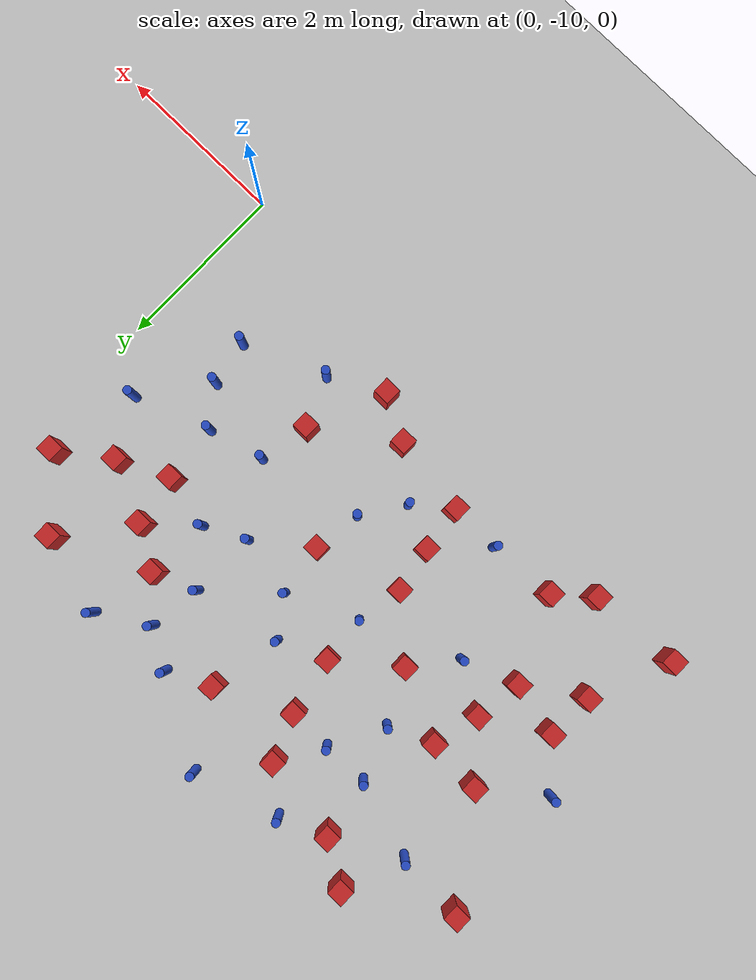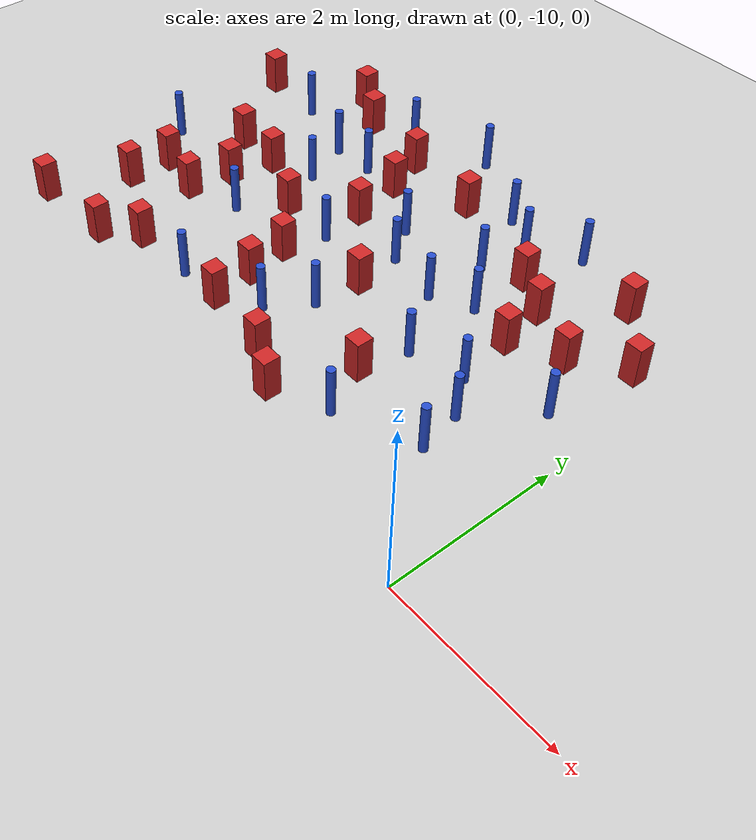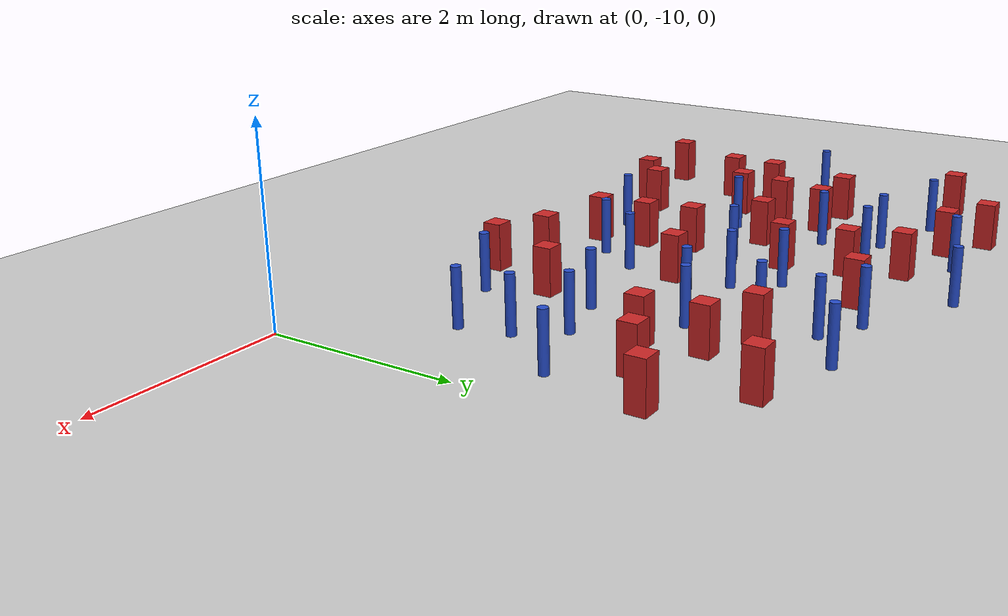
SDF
<sdf version="1.6">
 <world name="default">
  <model name="ground_plane">
   <static>1</static>
   <link name="link">
    <collision name="collision">
     <geometry><plane><normal>0 0 1</normal><size>100 100</size></plane></geometry>
     <surface><friction><ode><mu>100</mu><mu2>50</mu2></ode></friction></surface>
    </collision>
    <visual name="visual">
     <cast_shadows>0</cast_shadows>
     <geometry><plane><normal>0 0 1</normal><size>100 100</size></plane></geometry>
     <material>
      <ambient>1.0 1.0 1.0 1.0</ambient>
      <diffuse>0.8 0.8 0.8 1.0</diffuse>
      <specular>0.01 0.01 0.01 1.000000</specular>
     </material>
    </visual>
   </link>
  </model>
  <model name="square_post_obstacle7">
   <static>true</static>
   <pose>-0.348357838696 -6.40661446399 8.22691968438e-08 7.2212513382e-06 -7.54495500217e-07 2.29674213826e-05</pose>
   <link name="link">
    <pose>0 0 0.25 0 -0 0</pose>
    <inertial>
     <mass>100</mass>
     <inertia>
      <ixx>0.166667</ixx>
      <ixy>0</ixy>
      <ixz>0</ixz>
      <iyy>0.166667</iyy>
      <iyz>0</iyz>
      <izz>0.166667</izz>
     </inertia>
    </inertial>
    <collision name="collision"><geometry><box><size>.2 .2 .5</size></box></geometry></collision>
    <visual name="visual">
     <geometry><box><size>.2 .2 .5</size></box></geometry>
     <material>
      <script><name>Gazebo/Red</name><uri>file://media/materials/scripts/gazebo.material</uri></script>
     </material>
    </visual>
   </link>
  </model>
  <model name="square_post_obstacle17">
   <static>true</static>
   <pose>-0.917751412728 -6.81275528591 8.22691968438e-08 7.22125133819e-06 -7.54495500217e-07 2.29674213826e-05</pose>
   <link name="link">
    <pose>0 0 0.25 0 -0 0</pose>
    <inertial>
     <mass>100</mass>
     <inertia>
      <ixx>0.166667</ixx>
      <ixy>0</ixy>
      <ixz>0</ixz>
      <iyy>0.166667</iyy>
      <iyz>0</iyz>
      <izz>0.166667</izz>
     </inertia>
    </inertial>
    <collision name="collision"><geometry><box><size>.2 .2 .5</size></box></geometry></collision>
    <visual name="visual">
     <geometry><box><size>.2 .2 .5</size></box></geometry>
     <material>
      <script><name>Gazebo/Red</name><uri>file://media/materials/scripts/gazebo.material</uri></script>
     </material>
    </visual>
   </link>
  </model>
  <model name="pole_obstacle20">
   <static>true</static>
   <pose>-3.23051718857 -8.1966301705 2.88873142074e-08 -9.9053668994e-09 4.60219948987e-07 -1.20965994963e-07</pose>
   <link name="link">
    <pose>0 0 0.3 0 -0 0</pose>
    <inertial>
     <mass>1</mass>
     <inertia><ixx>0.145833</ixx><ixy>0</ixy><ixz>0</ixz><iyy>0.145833</iyy><iyz>0</iyz><izz>0.125</izz></inertia>
    </inertial>
    <collision name="collision">
     <geometry><cylinder><radius>0.05</radius><length>.6</length></cylinder></geometry>
    </collision>
    <visual name="visual">
     <geometry><cylinder><radius>0.05</radius><length>.6</length></cylinder></geometry>
     <material>
      <script><name>Gazebo/Blue</name><uri>file://media/materials/scripts/gazebo.material</uri></script>
     </material>
    </visual>
   </link>
  </model>
  <model name="pole_obstacle21">
   <static>true</static>
   <pose>-2.45525858788 -5.79399990301 2.88873142074e-08 -9.90536689859e-09 4.60219948989e-07 -1.20965994961e-07</pose>
   <link name="link">
    <pose>0 0 0.3 0 -0 0</pose>
    <inertial>
     <mass>1</mass>
     <inertia><ixx>0.145833</ixx><ixy>0</ixy><ixz>0</ixz><iyy>0.145833</iyy><iyz>0</iyz><izz>0.125</izz></inertia>
    </inertial>
    <collision name="collision">
     <geometry><cylinder><radius>0.05</radius><length>.6</length></cylinder></geometry>
    </collision>
    <visual name="visual">
     <geometry><cylinder><radius>0.05</radius><length>.6</length></cylinder></geometry>
     <material>
      <script><name>Gazebo/Blue</name><uri>file://media/materials/scripts/gazebo.material</uri></script>
     </material>
    </visual>
   </link>
  </model>
  <model name="pole_obstacle22">
   <static>true</static>
   <pose>-0.980689446663 -8.69325914813 2.88873142074e-08 -9.90536690773e-09 4.60219948967e-07 -1.20965994976e-07</pose>
   <link name="link">
    <pose>0 0 0.3 0 -0 0</pose>
    <inertial>
     <mass>1</mass>
     <inertia><ixx>0.145833</ixx><ixy>0</ixy><ixz>0</ixz><iyy>0.145833</iyy><iyz>0</iyz><izz>0.125</izz></inertia>
    </inertial>
    <collision name="collision">
     <geometry><cylinder><radius>0.05</radius><length>.6</length></cylinder></geometry>
    </collision>
    <visual name="visual">
     <geometry><cylinder><radius>0.05</radius><length>.6</length></cylinder></geometry>
     <material>
      <script><name>Gazebo/Blue</name><uri>file://media/materials/scripts/gazebo.material</uri></script>
     </material>
    </visual>
   </link>
  </model>
  <model name="square_post_obstacle20">
   <static>true</static>
   <pose>-3.03909078209 -9.11293925311 8.22691968438e-08 7.22125133819e-06 -7.54495500217e-07 2.29674213826e-05</pose>
   <link name="link">
    <pose>0 0 0.25 0 -0 0</pose>
    <inertial>
     <mass>100</mass>
     <inertia>
      <ixx>0.166667</ixx>
      <ixy>0</ixy>
      <ixz>0</ixz>
      <iyy>0.166667</iyy>
      <iyz>0</iyz>
      <izz>0.166667</izz>
     </inertia>
    </inertial>
    <collision name="collision"><geometry><box><size>.2 .2 .5</size></box></geometry></collision>
    <visual name="visual">
     <geometry><box><size>.2 .2 .5</size></box></geometry>
     <material>
      <script><name>Gazebo/Red</name><uri>file://media/materials/scripts/gazebo.material</uri></script>
     </material>
    </visual>
   </link>
  </model>
  <model name="square_post_obstacle27">
   <static>true</static>
   <pose>-5.74001574737 -8.08323386068 8.22691968438e-08 7.2212513382e-06 -7.54495500217e-07 2.29674213826e-05</pose>
   <link name="link">
    <pose>0 0 0.25 0 -0 0</pose>
    <inertial>
     <mass>100</mass>
     <inertia>
      <ixx>0.166667</ixx>
      <ixy>0</ixy>
      <ixz>0</ixz>
      <iyy>0.166667</iyy>
      <iyz>0</iyz>
      <izz>0.166667</izz>
     </inertia>
    </inertial>
    <collision name="collision"><geometry><box><size>.2 .2 .5</size></box></geometry></collision>
    <visual name="visual">
     <geometry><box><size>.2 .2 .5</size></box></geometry>
     <material>
      <script><name>Gazebo/Red</name><uri>file://media/materials/scripts/gazebo.material</uri></script>
     </material>
    </visual>
   </link>
  </model>
  <model name="square_post_obstacle28">
   <static>true</static>
   <pose>-2.5342378268 -9.38205166103 8.22691968438e-08 7.22125133819e-06 -7.54495500217e-07 2.29674213826e-05</pose>
   <link name="link">
    <pose>0 0 0.25 0 -0 0</pose>
    <inertial>
     <mass>100</mass>
     <inertia>
      <ixx>0.166667</ixx>
      <ixy>0</ixy>
      <ixz>0</ixz>
      <iyy>0.166667</iyy>
      <iyz>0</iyz>
      <izz>0.166667</izz>
     </inertia>
    </inertial>
    <collision name="collision"><geometry><box><size>.2 .2 .5</size></box></geometry></collision>
    <visual name="visual">
     <geometry><box><size>.2 .2 .5</size></box></geometry>
     <material>
      <script><name>Gazebo/Red</name><uri>file://media/materials/scripts/gazebo.material</uri></script>
     </material>
    </visual>
   </link>
  </model>
  <model name="pole_obstacle38">
   <static>true</static>
   <pose>-4.86659168057 -5.2782807568 2.88873142074e-08 -9.90536690842e-09 4.60219948965e-07 -1.20965994976e-07</pose>
   <link name="link">
    <pose>0 0 0.3 0 -0 0</pose>
    <inertial>
     <mass>1</mass>
     <inertia><ixx>0.145833</ixx><ixy>0</ixy><ixz>0</ixz><iyy>0.145833</iyy><iyz>0</iyz><izz>0.125</izz></inertia>
    </inertial>
    <collision name="collision">
     <geometry><cylinder><radius>0.05</radius><length>.6</length></cylinder></geometry>
    </collision>
    <visual name="visual">
     <geometry><cylinder><radius>0.05</radius><length>.6</length></cylinder></geometry>
     <material>
      <script><name>Gazebo/Blue</name><uri>file://media/materials/scripts/gazebo.material</uri></script>
     </material>
    </visual>
   </link>
  </model>
  <model name="square_post_obstacle34">
   <static>true</static>
   <pose>-3.95529857144 -8.99004881526 8.22691968438e-08 7.22125133819e-06 -7.54495500217e-07 2.29674213826e-05</pose>
   <link name="link">
    <pose>0 0 0.25 0 -0 0</pose>
    <inertial>
     <mass>100</mass>
     <inertia>
      <ixx>0.166667</ixx>
      <ixy>0</ixy>
      <ixz>0</ixz>
      <iyy>0.166667</iyy>
      <iyz>0</iyz>
      <izz>0.166667</izz>
     </inertia>
    </inertial>
    <collision name="collision"><geometry><box><size>.2 .2 .5</size></box></geometry></collision>
    <visual name="visual">
     <geometry><box><size>.2 .2 .5</size></box></geometry>
     <material>
      <script><name>Gazebo/Red</name><uri>file://media/materials/scripts/gazebo.material</uri></script>
     </material>
    </visual>
   </link>
  </model>
  <model name="square_post_obstacle39">
   <static>true</static>
   <pose>-0.997329518842 -5.72540533813 8.22691968438e-08 7.22125133819e-06 -7.54495500217e-07 2.29674213826e-05</pose>
   <link name="link">
    <pose>0 0 0.25 0 -0 0</pose>
    <inertial>
     <mass>100</mass>
     <inertia>
      <ixx>0.166667</ixx>
      <ixy>0</ixy>
      <ixz>0</ixz>
      <iyy>0.166667</iyy>
      <iyz>0</iyz>
      <izz>0.166667</izz>
     </inertia>
    </inertial>
    <collision name="collision"><geometry><box><size>.2 .2 .5</size></box></geometry></collision>
    <visual name="visual">
     <geometry><box><size>.2 .2 .5</size></box></geometry>
     <material>
      <script><name>Gazebo/Red</name><uri>file://media/materials/scripts/gazebo.material</uri></script>
     </material>
    </visual>
   </link>
  </model>
  <model name="pole_obstacle62">
   <static>true</static>
   <pose>-3.54417577692 -6.61488590834 2.88873142074e-08 -9.90536689859e-09 4.60219948989e-07 -1.20965994961e-07</pose>
   <link name="link">
    <pose>0 0 0.3 0 -0 0</pose>
    <inertial>
     <mass>1</mass>
     <inertia><ixx>0.145833</ixx><ixy>0</ixy><ixz>0</ixz><iyy>0.145833</iyy><iyz>0</iyz><izz>0.125</izz></inertia>
    </inertial>
    <collision name="collision">
     <geometry><cylinder><radius>0.05</radius><length>.6</length></cylinder></geometry>
    </collision>
    <visual name="visual">
     <geometry><cylinder><radius>0.05</radius><length>.6</length></cylinder></geometry>
     <material>
      <script><name>Gazebo/Blue</name><uri>file://media/materials/scripts/gazebo.material</uri></script>
     </material>
    </visual>
   </link>
  </model>
  <model name="square_post_obstacle49">
   <static>true</static>
   <pose>-4.12504720239 -7.93217668984 8.22691968438e-08 7.2212513382e-06 -7.54495500217e-07 2.29674213826e-05</pose>
   <link name="link">
    <pose>0 0 0.25 0 -0 0</pose>
    <inertial>
     <mass>100</mass>
     <inertia>
      <ixx>0.166667</ixx>
      <ixy>0</ixy>
      <ixz>0</ixz>
      <iyy>0.166667</iyy>
      <iyz>0</iyz>
      <izz>0.166667</izz>
     </inertia>
    </inertial>
    <collision name="collision"><geometry><box><size>.2 .2 .5</size></box></geometry></collision>
    <visual name="visual">
     <geometry><box><size>.2 .2 .5</size></box></geometry>
     <material>
      <script><name>Gazebo/Red</name><uri>file://media/materials/scripts/gazebo.material</uri></script>
     </material>
    </visual>
   </link>
  </model>
  <model name="pole_obstacle63">
   <static>true</static>
   <pose>-6.83037953571 -7.46518707833 2.88873142074e-08 -9.90536690842e-09 4.60219948965e-07 -1.20965994976e-07</pose>
   <link name="link">
    <pose>0 0 0.3 0 -0 0</pose>
    <inertial>
     <mass>1</mass>
     <inertia><ixx>0.145833</ixx><ixy>0</ixy><ixz>0</ixz><iyy>0.145833</iyy><iyz>0</iyz><izz>0.125</izz></inertia>
    </inertial>
    <collision name="collision">
     <geometry><cylinder><radius>0.05</radius><length>.6</length></cylinder></geometry>
    </collision>
    <visual name="visual">
     <geometry><cylinder><radius>0.05</radius><length>.6</length></cylinder></geometry>
     <material>
      <script><name>Gazebo/Blue</name><uri>file://media/materials/scripts/gazebo.material</uri></script>
     </material>
    </visual>
   </link>
  </model>
  <model name="pole_obstacle64">
   <static>true</static>
   <pose>-2.55097333491 -7.17607257755 2.88873142074e-08 -9.90536689859e-09 4.60219948989e-07 -1.20965994961e-07</pose>
   <link name="link">
    <pose>0 0 0.3 0 -0 0</pose>
    <inertial>
     <mass>1</mass>
     <inertia><ixx>0.145833</ixx><ixy>0</ixy><ixz>0</ixz><iyy>0.145833</iyy><iyz>0</iyz><izz>0.125</izz></inertia>
    </inertial>
    <collision name="collision">
     <geometry><cylinder><radius>0.05</radius><length>.6</length></cylinder></geometry>
    </collision>
    <visual name="visual">
     <geometry><cylinder><radius>0.05</radius><length>.6</length></cylinder></geometry>
     <material>
      <script><name>Gazebo/Blue</name><uri>file://media/materials/scripts/gazebo.material</uri></script>
     </material>
    </visual>
   </link>
  </model>
  <model name="pole_obstacle66">
   <static>true</static>
   <pose>-3.88295202139 -4.98923513846 2.88873142074e-08 -9.90536692062e-09 4.60219948937e-07 -1.20965994985e-07</pose>
   <link name="link">
    <pose>0 0 0.3 0 -0 0</pose>
    <inertial>
     <mass>1</mass>
     <inertia><ixx>0.145833</ixx><ixy>0</ixy><ixz>0</ixz><iyy>0.145833</iyy><iyz>0</iyz><izz>0.125</izz></inertia>
    </inertial>
    <collision name="collision">
     <geometry><cylinder><radius>0.05</radius><length>.6</length></cylinder></geometry>
    </collision>
    <visual name="visual">
     <geometry><cylinder><radius>0.05</radius><length>.6</length></cylinder></geometry>
     <material>
      <script><name>Gazebo/Blue</name><uri>file://media/materials/scripts/gazebo.material</uri></script>
     </material>
    </visual>
   </link>
  </model>
  <model name="pole_obstacle77">
   <static>true</static>
   <pose>-2.53672829721 -6.39868490356 2.88873142074e-08 -9.90536689859e-09 4.60219948989e-07 -1.20965994961e-07</pose>
   <link name="link">
    <pose>0 0 0.3 0 -0 0</pose>
    <inertial>
     <mass>1</mass>
     <inertia><ixx>0.145833</ixx><ixy>0</ixy><ixz>0</ixz><iyy>0.145833</iyy><iyz>0</iyz><izz>0.125</izz></inertia>
    </inertial>
    <collision name="collision">
     <geometry><cylinder><radius>0.05</radius><length>.6</length></cylinder></geometry>
    </collision>
    <visual name="visual">
     <geometry><cylinder><radius>0.05</radius><length>.6</length></cylinder></geometry>
     <material>
      <script><name>Gazebo/Blue</name><uri>file://media/materials/scripts/gazebo.material</uri></script>
     </material>
    </visual>
   </link>
  </model>
  <model name="pole_obstacle82">
   <static>true</static>
   <pose>-3.54891371886 -8.67659211748 2.88873142074e-08 -9.90536692318e-09 4.6021994893e-07 -1.20965994988e-07</pose>
   <link name="link">
    <pose>0 0 0.3 0 -0 0</pose>
    <inertial>
     <mass>1</mass>
     <inertia><ixx>0.145833</ixx><ixy>0</ixy><ixz>0</ixz><iyy>0.145833</iyy><iyz>0</iyz><izz>0.125</izz></inertia>
    </inertial>
    <collision name="collision">
     <geometry><cylinder><radius>0.05</radius><length>.6</length></cylinder></geometry>
    </collision>
    <visual name="visual">
     <geometry><cylinder><radius>0.05</radius><length>.6</length></cylinder></geometry>
     <material>
      <script><name>Gazebo/Blue</name><uri>file://media/materials/scripts/gazebo.material</uri></script>
     </material>
    </visual>
   </link>
  </model>
  <model name="square_post_obstacle72">
   <static>true</static>
   <pose>-4.08299354153 -6.85313250317 8.22691968438e-08 7.22125133819e-06 -7.54495500217e-07 2.29674213826e-05</pose>
   <link name="link">
    <pose>0 0 0.25 0 -0 0</pose>
    <inertial>
     <mass>100</mass>
     <inertia>
      <ixx>0.166667</ixx>
      <ixy>0</ixy>
      <ixz>0</ixz>
      <iyy>0.166667</iyy>
      <iyz>0</iyz>
      <izz>0.166667</izz>
     </inertia>
    </inertial>
    <collision name="collision"><geometry><box><size>.2 .2 .5</size></box></geometry></collision>
    <visual name="visual">
     <geometry><box><size>.2 .2 .5</size></box></geometry>
     <material>
      <script><name>Gazebo/Red</name><uri>file://media/materials/scripts/gazebo.material</uri></script>
     </material>
    </visual>
   </link>
  </model>
  <model name="pole_obstacle84">
   <static>true</static>
   <pose>-4.72381636459 -6.17760296328 2.88873142074e-08 -9.90536690842e-09 4.60219948965e-07 -1.20965994976e-07</pose>
   <link name="link">
    <pose>0 0 0.3 0 -0 0</pose>
    <inertial>
     <mass>1</mass>
     <inertia><ixx>0.145833</ixx><ixy>0</ixy><ixz>0</ixz><iyy>0.145833</iyy><iyz>0</iyz><izz>0.125</izz></inertia>
    </inertial>
    <collision name="collision">
     <geometry><cylinder><radius>0.05</radius><length>.6</length></cylinder></geometry>
    </collision>
    <visual name="visual">
     <geometry><cylinder><radius>0.05</radius><length>.6</length></cylinder></geometry>
     <material>
      <script><name>Gazebo/Blue</name><uri>file://media/materials/scripts/gazebo.material</uri></script>
     </material>
    </visual>
   </link>
  </model>
  <model name="pole_obstacle89">
   <static>true</static>
   <pose>-5.12787751065 -7.86067862472 2.88873142074e-08 -9.90536690842e-09 4.60219948965e-07 -1.20965994976e-07</pose>
   <link name="link">
    <pose>0 0 0.3 0 -0 0</pose>
    <inertial>
     <mass>1</mass>
     <inertia><ixx>0.145833</ixx><ixy>0</ixy><ixz>0</ixz><iyy>0.145833</iyy><iyz>0</iyz><izz>0.125</izz></inertia>
    </inertial>
    <collision name="collision">
     <geometry><cylinder><radius>0.05</radius><length>.6</length></cylinder></geometry>
    </collision>
    <visual name="visual">
     <geometry><cylinder><radius>0.05</radius><length>.6</length></cylinder></geometry>
     <material>
      <script><name>Gazebo/Blue</name><uri>file://media/materials/scripts/gazebo.material</uri></script>
     </material>
    </visual>
   </link>
  </model>
  <model name="pole_obstacle91">
   <static>true</static>
   <pose>-1.90899262102 -9.07476908773 2.88873142074e-08 -9.90536690474e-09 4.60219948974e-07 -1.2096599497e-07</pose>
   <link name="link">
    <pose>0 0 0.3 0 -0 0</pose>
    <inertial>
     <mass>1</mass>
     <inertia><ixx>0.145833</ixx><ixy>0</ixy><ixz>0</ixz><iyy>0.145833</iyy><iyz>0</iyz><izz>0.125</izz></inertia>
    </inertial>
    <collision name="collision">
     <geometry><cylinder><radius>0.05</radius><length>.6</length></cylinder></geometry>
    </collision>
    <visual name="visual">
     <geometry><cylinder><radius>0.05</radius><length>.6</length></cylinder></geometry>
     <material>
      <script><name>Gazebo/Blue</name><uri>file://media/materials/scripts/gazebo.material</uri></script>
     </material>
    </visual>
   </link>
  </model>
  <model name="square_post_obstacle90">
   <static>true</static>
   <pose>-1.59532195453 -6.49650093177 8.22691968438e-08 7.2212513382e-06 -7.54495500217e-07 2.29674213826e-05</pose>
   <link name="link">
    <pose>0 0 0.25 0 -0 0</pose>
    <inertial>
     <mass>100</mass>
     <inertia>
      <ixx>0.166667</ixx>
      <ixy>0</ixy>
      <ixz>0</ixz>
      <iyy>0.166667</iyy>
      <iyz>0</iyz>
      <izz>0.166667</izz>
     </inertia>
    </inertial>
    <collision name="collision"><geometry><box><size>.2 .2 .5</size></box></geometry></collision>
    <visual name="visual">
     <geometry><box><size>.2 .2 .5</size></box></geometry>
     <material>
      <script><name>Gazebo/Red</name><uri>file://media/materials/scripts/gazebo.material</uri></script>
     </material>
    </visual>
   </link>
  </model>
  <model name="square_post_obstacle94">
   <static>true</static>
   <pose>-4.02886952963 -8.45556875409 8.22691968438e-08 7.22125133819e-06 -7.54495500217e-07 2.29674213826e-05</pose>
   <link name="link">
    <pose>0 0 0.25 0 -0 0</pose>
    <inertial>
     <mass>100</mass>
     <inertia>
      <ixx>0.166667</ixx>
      <ixy>0</ixy>
      <ixz>0</ixz>
      <iyy>0.166667</iyy>
      <iyz>0</iyz>
      <izz>0.166667</izz>
     </inertia>
    </inertial>
    <collision name="collision"><geometry><box><size>.2 .2 .5</size></box></geometry></collision>
    <visual name="visual">
     <geometry><box><size>.2 .2 .5</size></box></geometry>
     <material>
      <script><name>Gazebo/Red</name><uri>file://media/materials/scripts/gazebo.material</uri></script>
     </material>
    </visual>
   </link>
  </model>
  <model name="pole_obstacle108">
   <static>true</static>
   <pose>-1.89030429949 -5.4449027839 2.88873142074e-08 -9.90536689852e-09 4.60219948989e-07 -1.2096599496e-07</pose>
   <link name="link">
    <pose>0 0 0.3 0 -0 0</pose>
    <inertial>
     <mass>1</mass>
     <inertia><ixx>0.145833</ixx><ixy>0</ixy><ixz>0</ixz><iyy>0.145833</iyy><iyz>0</iyz><izz>0.125</izz></inertia>
    </inertial>
    <collision name="collision">
     <geometry><cylinder><radius>0.05</radius><length>.6</length></cylinder></geometry>
    </collision>
    <visual name="visual">
     <geometry><cylinder><radius>0.05</radius><length>.6</length></cylinder></geometry>
     <material>
      <script><name>Gazebo/Blue</name><uri>file://media/materials/scripts/gazebo.material</uri></script>
     </material>
    </visual>
   </link>
  </model>
  <model name="pole_obstacle110">
   <static>true</static>
   <pose>-0.530276055327 -7.43998476336 2.88873142074e-08 -9.90536689526e-09 4.60219948997e-07 -1.20965994955e-07</pose>
   <link name="link">
    <pose>0 0 0.3 0 -0 0</pose>
    <inertial>
     <mass>1</mass>
     <inertia><ixx>0.145833</ixx><ixy>0</ixy><ixz>0</ixz><iyy>0.145833</iyy><iyz>0</iyz><izz>0.125</izz></inertia>
    </inertial>
    <collision name="collision">
     <geometry><cylinder><radius>0.05</radius><length>.6</length></cylinder></geometry>
    </collision>
    <visual name="visual">
     <geometry><cylinder><radius>0.05</radius><length>.6</length></cylinder></geometry>
     <material>
      <script><name>Gazebo/Blue</name><uri>file://media/materials/scripts/gazebo.material</uri></script>
     </material>
    </visual>
   </link>
  </model>
  <model name="pole_obstacle112">
   <static>true</static>
   <pose>-3.24332521711 -7.04028647669 2.88873142074e-08 -9.90536692062e-09 4.60219948937e-07 -1.20965994985e-07</pose>
   <link name="link">
    <pose>0 0 0.3 0 -0 0</pose>
    <inertial>
     <mass>1</mass>
     <inertia><ixx>0.145833</ixx><ixy>0</ixy><ixz>0</ixz><iyy>0.145833</iyy><iyz>0</iyz><izz>0.125</izz></inertia>
    </inertial>
    <collision name="collision">
     <geometry><cylinder><radius>0.05</radius><length>.6</length></cylinder></geometry>
    </collision>
    <visual name="visual">
     <geometry><cylinder><radius>0.05</radius><length>.6</length></cylinder></geometry>
     <material>
      <script><name>Gazebo/Blue</name><uri>file://media/materials/scripts/gazebo.material</uri></script>
     </material>
    </visual>
   </link>
  </model>
  <model name="pole_obstacle114">
   <static>true</static>
   <pose>-4.54447999468 -8.99239263103 2.88873142074e-08 -9.9053668967e-09 4.60219948993e-07 -1.20965994957e-07</pose>
   <link name="link">
    <pose>0 0 0.3 0 -0 0</pose>
    <inertial>
     <mass>1</mass>
     <inertia><ixx>0.145833</ixx><ixy>0</ixy><ixz>0</ixz><iyy>0.145833</iyy><iyz>0</iyz><izz>0.125</izz></inertia>
    </inertial>
    <collision name="collision">
     <geometry><cylinder><radius>0.05</radius><length>.6</length></cylinder></geometry>
    </collision>
    <visual name="visual">
     <geometry><cylinder><radius>0.05</radius><length>.6</length></cylinder></geometry>
     <material>
      <script><name>Gazebo/Blue</name><uri>file://media/materials/scripts/gazebo.material</uri></script>
     </material>
    </visual>
   </link>
  </model>
  <model name="square_post_obstacle112">
   <static>true</static>
   <pose>-5.71250029169 -9.35559924075 8.22691968438e-08 7.22125133819e-06 -7.54495500217e-07 2.29674213826e-05</pose>
   <link name="link">
    <pose>0 0 0.25 0 -0 0</pose>
    <inertial>
     <mass>100</mass>
     <inertia>
      <ixx>0.166667</ixx>
      <ixy>0</ixy>
      <ixz>0</ixz>
      <iyy>0.166667</iyy>
      <iyz>0</iyz>
      <izz>0.166667</izz>
     </inertia>
    </inertial>
    <collision name="collision"><geometry><box><size>.2 .2 .5</size></box></geometry></collision>
    <visual name="visual">
     <geometry><box><size>.2 .2 .5</size></box></geometry>
     <material>
      <script><name>Gazebo/Red</name><uri>file://media/materials/scripts/gazebo.material</uri></script>
     </material>
    </visual>
   </link>
  </model>
  <model name="square_post_obstacle118">
   <static>true</static>
   <pose>-6.35644505102 -7.95260192705 8.22691968438e-08 7.2212513382e-06 -7.54495500217e-07 2.29674213826e-05</pose>
   <link name="link">
    <pose>0 0 0.25 0 -0 0</pose>
    <inertial>
     <mass>100</mass>
     <inertia>
      <ixx>0.166667</ixx>
      <ixy>0</ixy>
      <ixz>0</ixz>
      <iyy>0.166667</iyy>
      <iyz>0</iyz>
      <izz>0.166667</izz>
     </inertia>
    </inertial>
    <collision name="collision"><geometry><box><size>.2 .2 .5</size></box></geometry></collision>
    <visual name="visual">
     <geometry><box><size>.2 .2 .5</size></box></geometry>
     <material>
      <script><name>Gazebo/Red</name><uri>file://media/materials/scripts/gazebo.material</uri></script>
     </material>
    </visual>
   </link>
  </model>
  <model name="square_post_obstacle120">
   <static>true</static>
   <pose>-5.3213302282 -9.02735830246 8.22691968438e-08 7.22125133819e-06 -7.54495500217e-07 2.29674213826e-05</pose>
   <link name="link">
    <pose>0 0 0.25 0 -0 0</pose>
    <inertial>
     <mass>100</mass>
     <inertia>
      <ixx>0.166667</ixx>
      <ixy>0</ixy>
      <ixz>0</ixz>
      <iyy>0.166667</iyy>
      <iyz>0</iyz>
      <izz>0.166667</izz>
     </inertia>
    </inertial>
    <collision name="collision"><geometry><box><size>.2 .2 .5</size></box></geometry></collision>
    <visual name="visual">
     <geometry><box><size>.2 .2 .5</size></box></geometry>
     <material>
      <script><name>Gazebo/Red</name><uri>file://media/materials/scripts/gazebo.material</uri></script>
     </material>
    </visual>
   </link>
  </model>
  <model name="pole_obstacle125">
   <static>true</static>
   <pose>-1.08273426989 -8.17155200205 2.88873142074e-08 -9.90536690474e-09 4.60219948974e-07 -1.2096599497e-07</pose>
   <link name="link">
    <pose>0 0 0.3 0 -0 0</pose>
    <inertial>
     <mass>1</mass>
     <inertia><ixx>0.145833</ixx><ixy>0</ixy><ixz>0</ixz><iyy>0.145833</iyy><iyz>0</iyz><izz>0.125</izz></inertia>
    </inertial>
    <collision name="collision">
     <geometry><cylinder><radius>0.05</radius><length>.6</length></cylinder></geometry>
    </collision>
    <visual name="visual">
     <geometry><cylinder><radius>0.05</radius><length>.6</length></cylinder></geometry>
     <material>
      <script><name>Gazebo/Blue</name><uri>file://media/materials/scripts/gazebo.material</uri></script>
     </material>
    </visual>
   </link>
  </model>
  <model name="square_post_obstacle130">
   <static>true</static>
   <pose>-2.1596336606 -8.50711701602 8.22691968438e-08 7.22125133819e-06 -7.54495500217e-07 2.29674213826e-05</pose>
   <link name="link">
    <pose>0 0 0.25 0 -0 0</pose>
    <inertial>
     <mass>100</mass>
     <inertia>
      <ixx>0.166667</ixx>
      <ixy>0</ixy>
      <ixz>0</ixz>
      <iyy>0.166667</iyy>
      <iyz>0</iyz>
      <izz>0.166667</izz>
     </inertia>
    </inertial>
    <collision name="collision"><geometry><box><size>.2 .2 .5</size></box></geometry></collision>
    <visual name="visual">
     <geometry><box><size>.2 .2 .5</size></box></geometry>
     <material>
      <script><name>Gazebo/Red</name><uri>file://media/materials/scripts/gazebo.material</uri></script>
     </material>
    </visual>
   </link>
  </model>
  <model name="square_post_obstacle131">
   <static>true</static>
   <pose>-5.86619119729 -5.21629282603 8.22691968438e-08 7.2212513382e-06 -7.54495500217e-07 2.29674213826e-05</pose>
   <link name="link">
    <pose>0 0 0.25 0 -0 0</pose>
    <inertial>
     <mass>100</mass>
     <inertia>
      <ixx>0.166667</ixx>
      <ixy>0</ixy>
      <ixz>0</ixz>
      <iyy>0.166667</iyy>
      <iyz>0</iyz>
      <izz>0.166667</izz>
     </inertia>
    </inertial>
    <collision name="collision"><geometry><box><size>.2 .2 .5</size></box></geometry></collision>
    <visual name="visual">
     <geometry><box><size>.2 .2 .5</size></box></geometry>
     <material>
      <script><name>Gazebo/Red</name><uri>file://media/materials/scripts/gazebo.material</uri></script>
     </material>
    </visual>
   </link>
  </model>
  <model name="square_post_obstacle133">
   <static>true</static>
   <pose>-4.42000778696 -5.67378131727 8.22691968438e-08 7.2212513382e-06 -7.54495500217e-07 2.29674213826e-05</pose>
   <link name="link">
    <pose>0 0 0.25 0 -0 0</pose>
    <inertial>
     <mass>100</mass>
     <inertia>
      <ixx>0.166667</ixx>
      <ixy>0</ixy>
      <ixz>0</ixz>
      <iyy>0.166667</iyy>
      <iyz>0</iyz>
      <izz>0.166667</izz>
     </inertia>
    </inertial>
    <collision name="collision"><geometry><box><size>.2 .2 .5</size></box></geometry></collision>
    <visual name="visual">
     <geometry><box><size>.2 .2 .5</size></box></geometry>
     <material>
      <script><name>Gazebo/Red</name><uri>file://media/materials/scripts/gazebo.material</uri></script>
     </material>
    </visual>
   </link>
  </model>
  <model name="square_post_obstacle137">
   <static>true</static>
   <pose>-6.14834986976 -6.96834936034 8.22691968438e-08 7.2212513382e-06 -7.54495500217e-07 2.29674213826e-05</pose>
   <link name="link">
    <pose>0 0 0.25 0 -0 0</pose>
    <inertial>
     <mass>100</mass>
     <inertia>
      <ixx>0.166667</ixx>
      <ixy>0</ixy>
      <ixz>0</ixz>
      <iyy>0.166667</iyy>
      <iyz>0</iyz>
      <izz>0.166667</izz>
     </inertia>
    </inertial>
    <collision name="collision"><geometry><box><size>.2 .2 .5</size></box></geometry></collision>
    <visual name="visual">
     <geometry><box><size>.2 .2 .5</size></box></geometry>
     <material>
      <script><name>Gazebo/Red</name><uri>file://media/materials/scripts/gazebo.material</uri></script>
     </material>
    </visual>
   </link>
  </model>
  <model name="square_post_obstacle150">
   <static>true</static>
   <pose>-5.37987601175 -5.51822755546 8.22691968438e-08 7.22125133819e-06 -7.54495500217e-07 2.29674213826e-05</pose>
   <link name="link">
    <pose>0 0 0.25 0 -0 0</pose>
    <inertial>
     <mass>100</mass>
     <inertia>
      <ixx>0.166667</ixx>
      <ixy>0</ixy>
      <ixz>0</ixz>
      <iyy>0.166667</iyy>
      <iyz>0</iyz>
      <izz>0.166667</izz>
     </inertia>
    </inertial>
    <collision name="collision"><geometry><box><size>.2 .2 .5</size></box></geometry></collision>
    <visual name="visual">
     <geometry><box><size>.2 .2 .5</size></box></geometry>
     <material>
      <script><name>Gazebo/Red</name><uri>file://media/materials/scripts/gazebo.material</uri></script>
     </material>
    </visual>
   </link>
  </model>
  <model name="pole_obstacle157">
   <static>true</static>
   <pose>-1.4016550704 -7.75342017304 2.88873142074e-08 -9.90536689852e-09 4.60219948989e-07 -1.2096599496e-07</pose>
   <link name="link">
    <pose>0 0 0.3 0 -0 0</pose>
    <inertial>
     <mass>1</mass>
     <inertia><ixx>0.145833</ixx><ixy>0</ixy><ixz>0</ixz><iyy>0.145833</iyy><iyz>0</iyz><izz>0.125</izz></inertia>
    </inertial>
    <collision name="collision">
     <geometry><cylinder><radius>0.05</radius><length>.6</length></cylinder></geometry>
    </collision>
    <visual name="visual">
     <geometry><cylinder><radius>0.05</radius><length>.6</length></cylinder></geometry>
     <material>
      <script><name>Gazebo/Blue</name><uri>file://media/materials/scripts/gazebo.material</uri></script>
     </material>
    </visual>
   </link>
  </model>
  <model name="pole_obstacle161">
   <static>true</static>
   <pose>-2.89869568328 -5.5387897747 2.88873142074e-08 -9.90536689859e-09 4.60219948989e-07 -1.20965994961e-07</pose>
   <link name="link">
    <pose>0 0 0.3 0 -0 0</pose>
    <inertial>
     <mass>1</mass>
     <inertia><ixx>0.145833</ixx><ixy>0</ixy><ixz>0</ixz><iyy>0.145833</iyy><iyz>0</iyz><izz>0.125</izz></inertia>
    </inertial>
    <collision name="collision">
     <geometry><cylinder><radius>0.05</radius><length>.6</length></cylinder></geometry>
    </collision>
    <visual name="visual">
     <geometry><cylinder><radius>0.05</radius><length>.6</length></cylinder></geometry>
     <material>
      <script><name>Gazebo/Blue</name><uri>file://media/materials/scripts/gazebo.material</uri></script>
     </material>
    </visual>
   </link>
  </model>
  <model name="square_post_obstacle164">
   <static>true</static>
   <pose>-5.65650703554 -7.54136615032 8.22691968438e-08 7.22125133819e-06 -7.54495500217e-07 2.29674213826e-05</pose>
   <link name="link">
    <pose>0 0 0.25 0 -0 0</pose>
    <inertial>
     <mass>100</mass>
     <inertia>
      <ixx>0.166667</ixx>
      <ixy>0</ixy>
      <ixz>0</ixz>
      <iyy>0.166667</iyy>
      <iyz>0</iyz>
      <izz>0.166667</izz>
     </inertia>
    </inertial>
    <collision name="collision"><geometry><box><size>.2 .2 .5</size></box></geometry></collision>
    <visual name="visual">
     <geometry><box><size>.2 .2 .5</size></box></geometry>
     <material>
      <script><name>Gazebo/Red</name><uri>file://media/materials/scripts/gazebo.material</uri></script>
     </material>
    </visual>
   </link>
  </model>
  <model name="pole_obstacle168">
   <static>true</static>
   <pose>-2.08210004575 -6.93854949618 2.88873142074e-08 -9.90536689859e-09 4.60219948989e-07 -1.20965994961e-07</pose>
   <link name="link">
    <pose>0 0 0.3 0 -0 0</pose>
    <inertial>
     <mass>1</mass>
     <inertia><ixx>0.145833</ixx><ixy>0</ixy><ixz>0</ixz><iyy>0.145833</iyy><iyz>0</iyz><izz>0.125</izz></inertia>
    </inertial>
    <collision name="collision">
     <geometry><cylinder><radius>0.05</radius><length>.6</length></cylinder></geometry>
    </collision>
    <visual name="visual">
     <geometry><cylinder><radius>0.05</radius><length>.6</length></cylinder></geometry>
     <material>
      <script><name>Gazebo/Blue</name><uri>file://media/materials/scripts/gazebo.material</uri></script>
     </material>
    </visual>
   </link>
  </model>
  <model name="square_post_obstacle165">
   <static>true</static>
   <pose>-6.76194366493 -9.41154506289 8.22691968438e-08 7.2212513382e-06 -7.54495500217e-07 2.29674213826e-05</pose>
   <link name="link">
    <pose>0 0 0.25 0 -0 0</pose>
    <inertial>
     <mass>100</mass>
     <inertia>
      <ixx>0.166667</ixx>
      <ixy>0</ixy>
      <ixz>0</ixz>
      <iyy>0.166667</iyy>
      <iyz>0</iyz>
      <izz>0.166667</izz>
     </inertia>
    </inertial>
    <collision name="collision"><geometry><box><size>.2 .2 .5</size></box></geometry></collision>
    <visual name="visual">
     <geometry><box><size>.2 .2 .5</size></box></geometry>
     <material>
      <script><name>Gazebo/Red</name><uri>file://media/materials/scripts/gazebo.material</uri></script>
     </material>
    </visual>
   </link>
  </model>
  <model name="square_post_obstacle169">
   <static>true</static>
   <pose>-1.49004234248 -7.08176794612 8.22691968438e-08 7.2212513382e-06 -7.54495500217e-07 2.29674213826e-05</pose>
   <link name="link">
    <pose>0 0 0.25 0 -0 0</pose>
    <inertial>
     <mass>100</mass>
     <inertia>
      <ixx>0.166667</ixx>
      <ixy>0</ixy>
      <ixz>0</ixz>
      <iyy>0.166667</iyy>
      <iyz>0</iyz>
      <izz>0.166667</izz>
     </inertia>
    </inertial>
    <collision name="collision"><geometry><box><size>.2 .2 .5</size></box></geometry></collision>
    <visual name="visual">
     <geometry><box><size>.2 .2 .5</size></box></geometry>
     <material>
      <script><name>Gazebo/Red</name><uri>file://media/materials/scripts/gazebo.material</uri></script>
     </material>
    </visual>
   </link>
  </model>
  <model name="square_post_obstacle172">
   <static>true</static>
   <pose>-3.39115172778 -5.79566399939 8.22691968438e-08 7.22125133819e-06 -7.54495500217e-07 2.29674213826e-05</pose>
   <link name="link">
    <pose>0 0 0.25 0 -0 0</pose>
    <inertial>
     <mass>100</mass>
     <inertia>
      <ixx>0.166667</ixx>
      <ixy>0</ixy>
      <ixz>0</ixz>
      <iyy>0.166667</iyy>
      <iyz>0</iyz>
      <izz>0.166667</izz>
     </inertia>
    </inertial>
    <collision name="collision"><geometry><box><size>.2 .2 .5</size></box></geometry></collision>
    <visual name="visual">
     <geometry><box><size>.2 .2 .5</size></box></geometry>
     <material>
      <script><name>Gazebo/Red</name><uri>file://media/materials/scripts/gazebo.material</uri></script>
     </material>
    </visual>
   </link>
  </model>
  <model name="square_post_obstacle173">
   <static>true</static>
   <pose>-5.52347424165 -7.00774336505 8.22691968438e-08 7.2212513382e-06 -7.54495500217e-07 2.29674213826e-05</pose>
   <link name="link">
    <pose>0 0 0.25 0 -0 0</pose>
    <inertial>
     <mass>100</mass>
     <inertia>
      <ixx>0.166667</ixx>
      <ixy>0</ixy>
      <ixz>0</ixz>
      <iyy>0.166667</iyy>
      <iyz>0</iyz>
      <izz>0.166667</izz>
     </inertia>
    </inertial>
    <collision name="collision"><geometry><box><size>.2 .2 .5</size></box></geometry></collision>
    <visual name="visual">
     <geometry><box><size>.2 .2 .5</size></box></geometry>
     <material>
      <script><name>Gazebo/Red</name><uri>file://media/materials/scripts/gazebo.material</uri></script>
     </material>
    </visual>
   </link>
  </model>
  <model name="pole_obstacle176">
   <static>true</static>
   <pose>-5.03919440594 -6.78604194261 2.88873142074e-08 -9.90536690842e-09 4.60219948965e-07 -1.20965994976e-07</pose>
   <link name="link">
    <pose>0 0 0.3 0 -0 0</pose>
    <inertial>
     <mass>1</mass>
     <inertia><ixx>0.145833</ixx><ixy>0</ixy><ixz>0</ixz><iyy>0.145833</iyy><iyz>0</iyz><izz>0.125</izz></inertia>
    </inertial>
    <collision name="collision">
     <geometry><cylinder><radius>0.05</radius><length>.6</length></cylinder></geometry>
    </collision>
    <visual name="visual">
     <geometry><cylinder><radius>0.05</radius><length>.6</length></cylinder></geometry>
     <material>
      <script><name>Gazebo/Blue</name><uri>file://media/materials/scripts/gazebo.material</uri></script>
     </material>
    </visual>
   </link>
  </model>
  <model name="pole_obstacle184">
   <static>true</static>
   <pose>-5.26001765277 -6.18838491505 2.88873142074e-08 -9.90536690842e-09 4.60219948965e-07 -1.20965994976e-07</pose>
   <link name="link">
    <pose>0 0 0.3 0 -0 0</pose>
    <inertial>
     <mass>1</mass>
     <inertia><ixx>0.145833</ixx><ixy>0</ixy><ixz>0</ixz><iyy>0.145833</iyy><iyz>0</iyz><izz>0.125</izz></inertia>
    </inertial>
    <collision name="collision">
     <geometry><cylinder><radius>0.05</radius><length>.6</length></cylinder></geometry>
    </collision>
    <visual name="visual">
     <geometry><cylinder><radius>0.05</radius><length>.6</length></cylinder></geometry>
     <material>
      <script><name>Gazebo/Blue</name><uri>file://media/materials/scripts/gazebo.material</uri></script>
     </material>
    </visual>
   </link>
  </model>
  <model name="pole_obstacle185">
   <static>true</static>
   <pose>-6.14565330414 -5.90467585186 2.88873142074e-08 -9.90536690842e-09 4.60219948965e-07 -1.20965994976e-07</pose>
   <link name="link">
    <pose>0 0 0.3 0 -0 0</pose>
    <inertial>
     <mass>1</mass>
     <inertia><ixx>0.145833</ixx><ixy>0</ixy><ixz>0</ixz><iyy>0.145833</iyy><iyz>0</iyz><izz>0.125</izz></inertia>
    </inertial>
    <collision name="collision">
     <geometry><cylinder><radius>0.05</radius><length>.6</length></cylinder></geometry>
    </collision>
    <visual name="visual">
     <geometry><cylinder><radius>0.05</radius><length>.6</length></cylinder></geometry>
     <material>
      <script><name>Gazebo/Blue</name><uri>file://media/materials/scripts/gazebo.material</uri></script>
     </material>
    </visual>
   </link>
  </model>
  <model name="square_post_obstacle184">
   <static>true</static>
   <pose>-6.9293934586 -5.87089429786 8.22691968438e-08 7.22125133819e-06 -7.54495500217e-07 2.29674213826e-05</pose>
   <link name="link">
    <pose>0 0 0.25 0 -0 0</pose>
    <inertial>
     <mass>100</mass>
     <inertia>
      <ixx>0.166667</ixx>
      <ixy>0</ixy>
      <ixz>0</ixz>
      <iyy>0.166667</iyy>
      <iyz>0</iyz>
      <izz>0.166667</izz>
     </inertia>
    </inertial>
    <collision name="collision"><geometry><box><size>.2 .2 .5</size></box></geometry></collision>
    <visual name="visual">
     <geometry><box><size>.2 .2 .5</size></box></geometry>
     <material>
      <script><name>Gazebo/Red</name><uri>file://media/materials/scripts/gazebo.material</uri></script>
     </material>
    </visual>
   </link>
  </model>
  <model name="square_post_obstacle188">
   <static>true</static>
   <pose>-2.06120087211 -6.21768012758 8.22691968438e-08 7.22125133819e-06 -7.54495500217e-07 2.29674213826e-05</pose>
   <link name="link">
    <pose>0 0 0.25 0 -0 0</pose>
    <inertial>
     <mass>100</mass>
     <inertia>
      <ixx>0.166667</ixx>
      <ixy>0</ixy>
      <ixz>0</ixz>
      <iyy>0.166667</iyy>
      <iyz>0</iyz>
      <izz>0.166667</izz>
     </inertia>
    </inertial>
    <collision name="collision"><geometry><box><size>.2 .2 .5</size></box></geometry></collision>
    <visual name="visual">
     <geometry><box><size>.2 .2 .5</size></box></geometry>
     <material>
      <script><name>Gazebo/Red</name><uri>file://media/materials/scripts/gazebo.material</uri></script>
     </material>
    </visual>
   </link>
  </model>
  <model name="pole_obstacle192">
   <static>true</static>
   <pose>-4.03336812961 -7.39478385578 2.88873142074e-08 -9.90536691069e-09 4.6021994896e-07 -1.20965994979e-07</pose>
   <link name="link">
    <pose>0 0 0.3 0 -0 0</pose>
    <inertial>
     <mass>1</mass>
     <inertia><ixx>0.145833</ixx><ixy>0</ixy><ixz>0</ixz><iyy>0.145833</iyy><iyz>0</iyz><izz>0.125</izz></inertia>
    </inertial>
    <collision name="collision">
     <geometry><cylinder><radius>0.05</radius><length>.6</length></cylinder></geometry>
    </collision>
    <visual name="visual">
     <geometry><cylinder><radius>0.05</radius><length>.6</length></cylinder></geometry>
     <material>
      <script><name>Gazebo/Blue</name><uri>file://media/materials/scripts/gazebo.material</uri></script>
     </material>
    </visual>
   </link>
  </model>
  <model name="pole_obstacle210">
   <static>true</static>
   <pose>-2.03688509876 -7.92377407672 2.88873142074e-08 -9.90536689575e-09 4.60219948995e-07 -1.20965994956e-07</pose>
   <link name="link">
    <pose>0 0 0.3 0 -0 0</pose>
    <inertial>
     <mass>1</mass>
     <inertia><ixx>0.145833</ixx><ixy>0</ixy><ixz>0</ixz><iyy>0.145833</iyy><iyz>0</iyz><izz>0.125</izz></inertia>
    </inertial>
    <collision name="collision">
     <geometry><cylinder><radius>0.05</radius><length>.6</length></cylinder></geometry>
    </collision>
    <visual name="visual">
     <geometry><cylinder><radius>0.05</radius><length>.6</length></cylinder></geometry>
     <material>
      <script><name>Gazebo/Blue</name><uri>file://media/materials/scripts/gazebo.material</uri></script>
     </material>
    </visual>
   </link>
  </model>
  <model name="square_post_obstacle209">
   <static>true</static>
   <pose>-4.73647324028 -7.37490939599 8.22691968438e-08 7.2212513382e-06 -7.54495500217e-07 2.29674213826e-05</pose>
   <link name="link">
    <pose>0 0 0.25 0 -0 0</pose>
    <inertial>
     <mass>100</mass>
     <inertia>
      <ixx>0.166667</ixx>
      <ixy>0</ixy>
      <ixz>0</ixz>
      <iyy>0.166667</iyy>
      <iyz>0</iyz>
      <izz>0.166667</izz>
     </inertia>
    </inertial>
    <collision name="collision"><geometry><box><size>.2 .2 .5</size></box></geometry></collision>
    <visual name="visual">
     <geometry><box><size>.2 .2 .5</size></box></geometry>
     <material>
      <script><name>Gazebo/Red</name><uri>file://media/materials/scripts/gazebo.material</uri></script>
     </material>
    </visual>
   </link>
  </model>
  <model name="square_post_obstacle214">
   <static>true</static>
   <pose>-6.37355786323 -8.49640020763 8.22691968438e-08 7.2212513382e-06 -7.54495500217e-07 2.29674213826e-05</pose>
   <link name="link">
    <pose>0 0 0.25 0 -0 0</pose>
    <inertial>
     <mass>100</mass>
     <inertia>
      <ixx>0.166667</ixx>
      <ixy>0</ixy>
      <ixz>0</ixz>
      <iyy>0.166667</iyy>
      <iyz>0</iyz>
      <izz>0.166667</izz>
     </inertia>
    </inertial>
    <collision name="collision"><geometry><box><size>.2 .2 .5</size></box></geometry></collision>
    <visual name="visual">
     <geometry><box><size>.2 .2 .5</size></box></geometry>
     <material>
      <script><name>Gazebo/Red</name><uri>file://media/materials/scripts/gazebo.material</uri></script>
     </material>
    </visual>
   </link>
  </model>
  <model name="square_post_obstacle227">
   <static>true</static>
   <pose>-3.16013181525 -7.6393167914 8.22691968438e-08 7.22125133819e-06 -7.54495500217e-07 2.29674213826e-05</pose>
   <link name="link">
    <pose>0 0 0.25 0 -0 0</pose>
    <inertial>
     <mass>100</mass>
     <inertia>
      <ixx>0.166667</ixx>
      <ixy>0</ixy>
      <ixz>0</ixz>
      <iyy>0.166667</iyy>
      <iyz>0</iyz>
      <izz>0.166667</izz>
     </inertia>
    </inertial>
    <collision name="collision"><geometry><box><size>.2 .2 .5</size></box></geometry></collision>
    <visual name="visual">
     <geometry><box><size>.2 .2 .5</size></box></geometry>
     <material>
      <script><name>Gazebo/Red</name><uri>file://media/materials/scripts/gazebo.material</uri></script>
     </material>
    </visual>
   </link>
  </model>
  <model name="square_post_obstacle232">
   <static>true</static>
   <pose>-4.21678665517 -6.19535342941 8.22691968438e-08 7.22125133819e-06 -7.54495500217e-07 2.29674213826e-05</pose>
   <link name="link">
    <pose>0 0 0.25 0 -0 0</pose>
    <inertial>
     <mass>100</mass>
     <inertia>
      <ixx>0.166667</ixx>
      <ixy>0</ixy>
      <ixz>0</ixz>
      <iyy>0.166667</iyy>
      <iyz>0</iyz>
      <izz>0.166667</izz>
     </inertia>
    </inertial>
    <collision name="collision"><geometry><box><size>.2 .2 .5</size></box></geometry></collision>
    <visual name="visual">
     <geometry><box><size>.2 .2 .5</size></box></geometry>
     <material>
      <script><name>Gazebo/Red</name><uri>file://media/materials/scripts/gazebo.material</uri></script>
     </material>
    </visual>
   </link>
  </model>
 </world>
</sdf>
